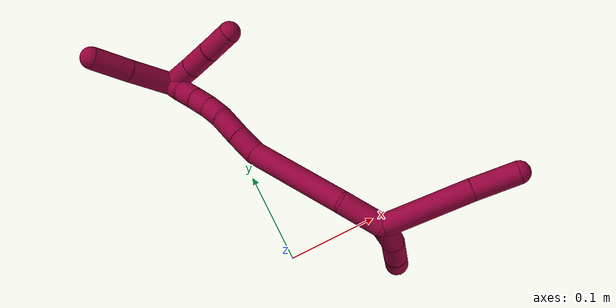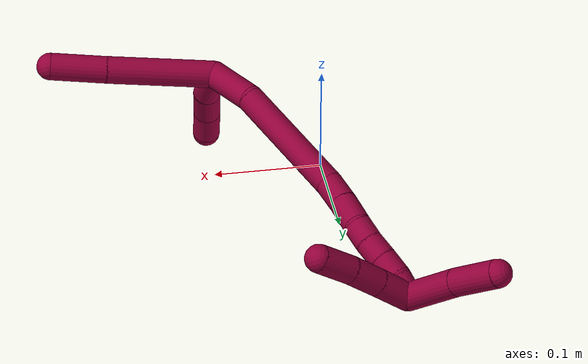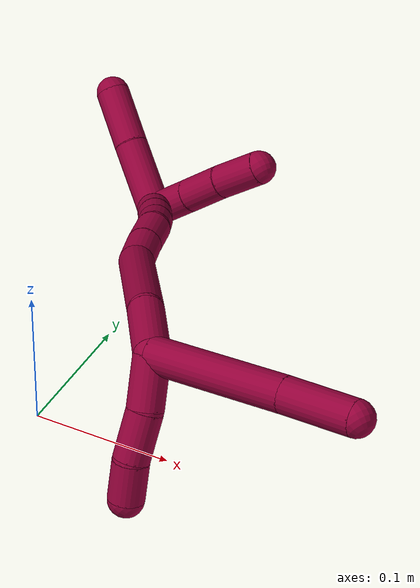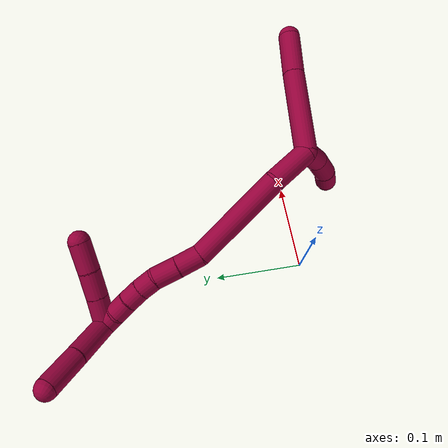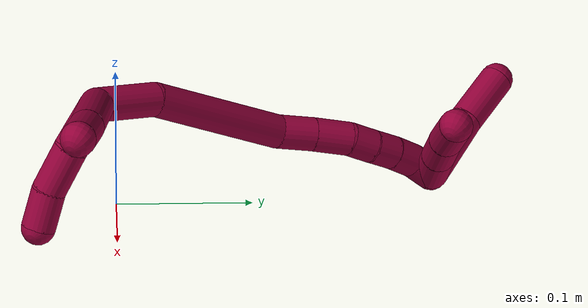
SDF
<sdf version="1.7">
 <world name="default">
  <model name="8">
   <static>0</static>
   <link name="8">
    <collision name="collision-cylinder-e_1_2_8">
     <pose>0.032631 0.004458 -0.036696 -3.02069 0.723194 -2.82423</pose>
     <geometry><cylinder><radius>0.0125</radius><length>0.098616</length></cylinder></geometry>
     <surface>
      <friction><ode><mu>1.16</mu><mu2>1.16</mu2><slip1>0</slip1><slip2>0</slip2></ode></friction>
      <contact><ode><kp>1e+06</kp><kd>1</kd><max_vel>0</max_vel><min_depth>0.001</min_depth></ode></contact>
     </surface>
    </collision>
    <visual name="visual-cylinder-e_1_2_8">
     <pose>0.032631 0.004458 -0.036696 -3.02069 0.723194 -2.82423</pose>
     <geometry><cylinder><radius>0.0125</radius><length>0.098616</length></cylinder></geometry>
     <material><ambient>0.584314 0 0.227451 1</ambient></material>
    </visual>
    <collision name="collision-cylinder-e_2_8_6">
     <pose>0.082022 0.010472 -0.092802 -3.06164 0.710679 -2.92684</pose>
     <geometry><cylinder><radius>0.0125</radius><length>0.051384</length></cylinder></geometry>
     <surface>
      <friction><ode><mu>1.16</mu><mu2>1.16</mu2><slip1>0</slip1><slip2>0</slip2></ode></friction>
      <contact><ode><kp>1e+06</kp><kd>1</kd><max_vel>0</max_vel><min_depth>0.001</min_depth></ode></contact>
     </surface>
    </collision>
    <visual name="visual-cylinder-e_2_8_6">
     <pose>0.082022 0.010472 -0.092802 -3.06164 0.710679 -2.92684</pose>
     <geometry><cylinder><radius>0.0125</radius><length>0.051384</length></cylinder></geometry>
     <material><ambient>0.584314 0 0.227451 1</ambient></material>
    </visual>
    <collision name="collision-cylinder-e_1_2_9">
     <pose>-0.01249 -0.000508 -0.013242 3.10328 -0.755783 -3.04513</pose>
     <geometry><cylinder><radius>0.0125</radius><length>0.03642</length></cylinder></geometry>
     <surface>
      <friction><ode><mu>1.16</mu><mu2>1.16</mu2><slip1>0</slip1><slip2>0</slip2></ode></friction>
      <contact><ode><kp>1e+06</kp><kd>1</kd><max_vel>0</max_vel><min_depth>0.001</min_depth></ode></contact>
     </surface>
    </collision>
    <visual name="visual-cylinder-e_1_2_9">
     <pose>-0.01249 -0.000508 -0.013242 3.10328 -0.755783 -3.04513</pose>
     <geometry><cylinder><radius>0.0125</radius><length>0.03642</length></cylinder></geometry>
     <material><ambient>0.584314 0 0.227451 1</ambient></material>
    </visual>
    <collision name="collision-cylinder-e_2_9_10">
     <pose>-0.039248 -0.000877 -0.036503 -3.12779 -0.958606 3.11504</pose>
     <geometry><cylinder><radius>0.0125</radius><length>0.034871</length></cylinder></geometry>
     <surface>
      <friction><ode><mu>1.16</mu><mu2>1.16</mu2><slip1>0</slip1><slip2>0</slip2></ode></friction>
      <contact><ode><kp>1e+06</kp><kd>1</kd><max_vel>0</max_vel><min_depth>0.001</min_depth></ode></contact>
     </surface>
    </collision>
    <visual name="visual-cylinder-e_2_9_10">
     <pose>-0.039248 -0.000877 -0.036503 -3.12779 -0.958606 3.11504</pose>
     <geometry><cylinder><radius>0.0125</radius><length>0.034871</length></cylinder></geometry>
     <material><ambient>0.584314 0 0.227451 1</ambient></material>
    </visual>
    <collision name="collision-cylinder-e_3_10_5">
     <pose>-0.064849 0.002325 -0.054784 -2.78651 -0.909823 2.4384</pose>
     <geometry><cylinder><radius>0.0125</radius><length>0.028709</length></cylinder></geometry>
     <surface>
      <friction><ode><mu>1.16</mu><mu2>1.16</mu2><slip1>0</slip1><slip2>0</slip2></ode></friction>
      <contact><ode><kp>1e+06</kp><kd>1</kd><max_vel>0</max_vel><min_depth>0.001</min_depth></ode></contact>
     </surface>
    </collision>
    <visual name="visual-cylinder-e_3_10_5">
     <pose>-0.064849 0.002325 -0.054784 -2.78651 -0.909823 2.4384</pose>
     <geometry><cylinder><radius>0.0125</radius><length>0.028709</length></cylinder></geometry>
     <material><ambient>0.584314 0 0.227451 1</ambient></material>
    </visual>
    <collision name="collision-cylinder-e_1_2_11">
     <pose>-0.004103 0.015785 0.018478 -0.706981 -0.167272 0.061846</pose>
     <geometry><cylinder><radius>0.0125</radius><length>0.049292</length></cylinder></geometry>
     <surface>
      <friction><ode><mu>1.16</mu><mu2>1.16</mu2><slip1>0</slip1><slip2>0</slip2></ode></friction>
      <contact><ode><kp>1e+06</kp><kd>1</kd><max_vel>0</max_vel><min_depth>0.001</min_depth></ode></contact>
     </surface>
    </collision>
    <visual name="visual-cylinder-e_1_2_11">
     <pose>-0.004103 0.015785 0.018478 -0.706981 -0.167272 0.061846</pose>
     <geometry><cylinder><radius>0.0125</radius><length>0.049292</length></cylinder></geometry>
     <material><ambient>0.584314 0 0.227451 1</ambient></material>
    </visual>
    <collision name="collision-cylinder-e_2_11_12">
     <pose>-0.028899 0.073879 0.068893 -0.924178 -0.372157 0.186977</pose>
     <geometry><cylinder><radius>0.0125</radius><length>0.11381</length></cylinder></geometry>
     <surface>
      <friction><ode><mu>1.16</mu><mu2>1.16</mu2><slip1>0</slip1><slip2>0</slip2></ode></friction>
      <contact><ode><kp>1e+06</kp><kd>1</kd><max_vel>0</max_vel><min_depth>0.001</min_depth></ode></contact>
     </surface>
    </collision>
    <visual name="visual-cylinder-e_2_11_12">
     <pose>-0.028899 0.073879 0.068893 -0.924178 -0.372157 0.186977</pose>
     <geometry><cylinder><radius>0.0125</radius><length>0.11381</length></cylinder></geometry>
     <material><ambient>0.584314 0 0.227451 1</ambient></material>
    </visual>
    <collision name="collision-cylinder-e_3_12_13">
     <pose>-0.050425 0.127753 0.108618 -0.9782 -0.059724 0.031794</pose>
     <geometry><cylinder><radius>0.0125</radius><length>0.027936</length></cylinder></geometry>
     <surface>
      <friction><ode><mu>1.16</mu><mu2>1.16</mu2><slip1>0</slip1><slip2>0</slip2></ode></friction>
      <contact><ode><kp>1e+06</kp><kd>1</kd><max_vel>0</max_vel><min_depth>0.001</min_depth></ode></contact>
     </surface>
    </collision>
    <visual name="visual-cylinder-e_3_12_13">
     <pose>-0.050425 0.127753 0.108618 -0.9782 -0.059724 0.031794</pose>
     <geometry><cylinder><radius>0.0125</radius><length>0.027936</length></cylinder></geometry>
     <material><ambient>0.584314 0 0.227451 1</ambient></material>
    </visual>
    <collision name="collision-cylinder-e_4_13_14">
     <pose>-0.052138 0.15153 0.123702 -1.03219 -0.061742 0.035039</pose>
     <geometry><cylinder><radius>0.0125</radius><length>0.028505</length></cylinder></geometry>
     <surface>
      <friction><ode><mu>1.16</mu><mu2>1.16</mu2><slip1>0</slip1><slip2>0</slip2></ode></friction>
      <contact><ode><kp>1e+06</kp><kd>1</kd><max_vel>0</max_vel><min_depth>0.001</min_depth></ode></contact>
     </surface>
    </collision>
    <visual name="visual-cylinder-e_4_13_14">
     <pose>-0.052138 0.15153 0.123702 -1.03219 -0.061742 0.035039</pose>
     <geometry><cylinder><radius>0.0125</radius><length>0.028505</length></cylinder></geometry>
     <material><ambient>0.584314 0 0.227451 1</ambient></material>
    </visual>
    <collision name="collision-cylinder-e_5_14_15">
     <pose>-0.055956 0.172113 0.135717 -1.05763 -0.296737 0.174233</pose>
     <geometry><cylinder><radius>0.0125</radius><length>0.020098</length></cylinder></geometry>
     <surface>
      <friction><ode><mu>1.16</mu><mu2>1.16</mu2><slip1>0</slip1><slip2>0</slip2></ode></friction>
      <contact><ode><kp>1e+06</kp><kd>1</kd><max_vel>0</max_vel><min_depth>0.001</min_depth></ode></contact>
     </surface>
    </collision>
    <visual name="visual-cylinder-e_5_14_15">
     <pose>-0.055956 0.172113 0.135717 -1.05763 -0.296737 0.174233</pose>
     <geometry><cylinder><radius>0.0125</radius><length>0.020098</length></cylinder></geometry>
     <material><ambient>0.584314 0 0.227451 1</ambient></material>
    </visual>
    <collision name="collision-cylinder-e_6_15_16">
     <pose>-0.062426 0.188296 0.145699 -0.977736 -0.358696 0.192281</pose>
     <geometry><cylinder><radius>0.0125</radius><length>0.02012</length></cylinder></geometry>
     <surface>
      <friction><ode><mu>1.16</mu><mu2>1.16</mu2><slip1>0</slip1><slip2>0</slip2></ode></friction>
      <contact><ode><kp>1e+06</kp><kd>1</kd><max_vel>0</max_vel><min_depth>0.001</min_depth></ode></contact>
     </surface>
    </collision>
    <visual name="visual-cylinder-e_6_15_16">
     <pose>-0.062426 0.188296 0.145699 -0.977736 -0.358696 0.192281</pose>
     <geometry><cylinder><radius>0.0125</radius><length>0.02012</length></cylinder></geometry>
     <material><ambient>0.584314 0 0.227451 1</ambient></material>
    </visual>
    <collision name="collision-cylinder-e_7_16_17">
     <pose>-0.070109 0.203907 0.155799 -1.0158 -0.42489 0.238977</pose>
     <geometry><cylinder><radius>0.0125</radius><length>0.020145</length></cylinder></geometry>
     <surface>
      <friction><ode><mu>1.16</mu><mu2>1.16</mu2><slip1>0</slip1><slip2>0</slip2></ode></friction>
      <contact><ode><kp>1e+06</kp><kd>1</kd><max_vel>0</max_vel><min_depth>0.001</min_depth></ode></contact>
     </surface>
    </collision>
    <visual name="visual-cylinder-e_7_16_17">
     <pose>-0.070109 0.203907 0.155799 -1.0158 -0.42489 0.238977</pose>
     <geometry><cylinder><radius>0.0125</radius><length>0.020145</length></cylinder></geometry>
     <material><ambient>0.584314 0 0.227451 1</ambient></material>
    </visual>
    <collision name="collision-cylinder-e_8_17_1">
     <pose>-0.079097 0.219973 0.16367 -1.21898 -0.502193 0.354414</pose>
     <geometry><cylinder><radius>0.0125</radius><length>0.020094</length></cylinder></geometry>
     <surface>
      <friction><ode><mu>1.16</mu><mu2>1.16</mu2><slip1>0</slip1><slip2>0</slip2></ode></friction>
      <contact><ode><kp>1e+06</kp><kd>1</kd><max_vel>0</max_vel><min_depth>0.001</min_depth></ode></contact>
     </surface>
    </collision>
    <visual name="visual-cylinder-e_8_17_1">
     <pose>-0.079097 0.219973 0.16367 -1.21898 -0.502193 0.354414</pose>
     <geometry><cylinder><radius>0.0125</radius><length>0.020094</length></cylinder></geometry>
     <material><ambient>0.584314 0 0.227451 1</ambient></material>
    </visual>
    <collision name="collision-cylinder-e_1_1_18">
     <pose>-0.079333 0.229503 0.193608 -0.046908 0.169193 -0.003978</pose>
     <geometry><cylinder><radius>0.0125</radius><length>0.054647</length></cylinder></geometry>
     <surface>
      <friction><ode><mu>1.16</mu><mu2>1.16</mu2><slip1>0</slip1><slip2>0</slip2></ode></friction>
      <contact><ode><kp>1e+06</kp><kd>1</kd><max_vel>0</max_vel><min_depth>0.001</min_depth></ode></contact>
     </surface>
    </collision>
    <visual name="visual-cylinder-e_1_1_18">
     <pose>-0.079333 0.229503 0.193608 -0.046908 0.169193 -0.003978</pose>
     <geometry><cylinder><radius>0.0125</radius><length>0.054647</length></cylinder></geometry>
     <material><ambient>0.584314 0 0.227451 1</ambient></material>
    </visual>
    <collision name="collision-cylinder-e_2_18_4">
     <pose>-0.071572 0.23323 0.242832 -0.109911 0.139782 -0.007702</pose>
     <geometry><cylinder><radius>0.0125</radius><length>0.045353</length></cylinder></geometry>
     <surface>
      <friction><ode><mu>1.16</mu><mu2>1.16</mu2><slip1>0</slip1><slip2>0</slip2></ode></friction>
      <contact><ode><kp>1e+06</kp><kd>1</kd><max_vel>0</max_vel><min_depth>0.001</min_depth></ode></contact>
     </surface>
    </collision>
    <visual name="visual-cylinder-e_2_18_4">
     <pose>-0.071572 0.23323 0.242832 -0.109911 0.139782 -0.007702</pose>
     <geometry><cylinder><radius>0.0125</radius><length>0.045353</length></cylinder></geometry>
     <material><ambient>0.584314 0 0.227451 1</ambient></material>
    </visual>
    <collision name="collision-cylinder-e_1_1_19">
     <pose>-0.067196 0.227587 0.161695 3.01179 1.27765 2.96703</pose>
     <geometry><cylinder><radius>0.0125</radius><length>0.034968</length></cylinder></geometry>
     <surface>
      <friction><ode><mu>1.16</mu><mu2>1.16</mu2><slip1>0</slip1><slip2>0</slip2></ode></friction>
      <contact><ode><kp>1e+06</kp><kd>1</kd><max_vel>0</max_vel><min_depth>0.001</min_depth></ode></contact>
     </surface>
    </collision>
    <visual name="visual-cylinder-e_1_1_19">
     <pose>-0.067196 0.227587 0.161695 3.01179 1.27765 2.96703</pose>
     <geometry><cylinder><radius>0.0125</radius><length>0.034968</length></cylinder></geometry>
     <material><ambient>0.584314 0 0.227451 1</ambient></material>
    </visual>
    <collision name="collision-cylinder-e_2_19_20">
     <pose>-0.035646 0.22672 0.152416 3.09179 1.28988 3.0754</pose>
     <geometry><cylinder><radius>0.0125</radius><length>0.030832</length></cylinder></geometry>
     <surface>
      <friction><ode><mu>1.16</mu><mu2>1.16</mu2><slip1>0</slip1><slip2>0</slip2></ode></friction>
      <contact><ode><kp>1e+06</kp><kd>1</kd><max_vel>0</max_vel><min_depth>0.001</min_depth></ode></contact>
     </surface>
    </collision>
    <visual name="visual-cylinder-e_2_19_20">
     <pose>-0.035646 0.22672 0.152416 3.09179 1.28988 3.0754</pose>
     <geometry><cylinder><radius>0.0125</radius><length>0.030832</length></cylinder></geometry>
     <material><ambient>0.584314 0 0.227451 1</ambient></material>
    </visual>
    <collision name="collision-cylinder-e_3_20_3">
     <pose>-0.004591 0.22726 0.142854 -3.00027 1.25279 -2.94658</pose>
     <geometry><cylinder><radius>0.0125</radius><length>0.0342</length></cylinder></geometry>
     <surface>
      <friction><ode><mu>1.16</mu><mu2>1.16</mu2><slip1>0</slip1><slip2>0</slip2></ode></friction>
      <contact><ode><kp>1e+06</kp><kd>1</kd><max_vel>0</max_vel><min_depth>0.001</min_depth></ode></contact>
     </surface>
    </collision>
    <visual name="visual-cylinder-e_3_20_3">
     <pose>-0.004591 0.22726 0.142854 -3.00027 1.25279 -2.94658</pose>
     <geometry><cylinder><radius>0.0125</radius><length>0.0342</length></cylinder></geometry>
     <material><ambient>0.584314 0 0.227451 1</ambient></material>
    </visual>
    <collision name="collision-sphere-3">
     <pose>0.011651 0.228013 0.137561 0 -0 0</pose>
     <geometry><sphere><radius>0.0125</radius></sphere></geometry>
     <surface>
      <friction><ode><mu>1.16</mu><mu2>1.16</mu2><slip1>0</slip1><slip2>0</slip2></ode></friction>
      <contact><ode><kp>1e+06</kp><kd>1</kd><max_vel>0</max_vel><min_depth>0.001</min_depth></ode></contact>
     </surface>
    </collision>
    <visual name="visual-sphere-3">
     <pose>0.011651 0.228013 0.137561 0 -0 0</pose>
     <geometry><sphere><radius>0.0125</radius></sphere></geometry>
     <material><ambient>0.584314 0 0.227451 1</ambient></material>
    </visual>
    <collision name="collision-sphere-20">
     <pose>-0.020834 0.226507 0.148148 0 -0 0</pose>
     <geometry><sphere><radius>0.0125</radius></sphere></geometry>
     <surface>
      <friction><ode><mu>1.16</mu><mu2>1.16</mu2><slip1>0</slip1><slip2>0</slip2></ode></friction>
      <contact><ode><kp>1e+06</kp><kd>1</kd><max_vel>0</max_vel><min_depth>0.001</min_depth></ode></contact>
     </surface>
    </collision>
    <visual name="visual-sphere-20">
     <pose>-0.020834 0.226507 0.148148 0 -0 0</pose>
     <geometry><sphere><radius>0.0125</radius></sphere></geometry>
     <material><ambient>0.584314 0 0.227451 1</ambient></material>
    </visual>
    <collision name="collision-sphere-19">
     <pose>-0.050457 0.226933 0.156685 0 -0 0</pose>
     <geometry><sphere><radius>0.0125</radius></sphere></geometry>
     <surface>
      <friction><ode><mu>1.16</mu><mu2>1.16</mu2><slip1>0</slip1><slip2>0</slip2></ode></friction>
      <contact><ode><kp>1e+06</kp><kd>1</kd><max_vel>0</max_vel><min_depth>0.001</min_depth></ode></contact>
     </surface>
    </collision>
    <visual name="visual-sphere-19">
     <pose>-0.050457 0.226933 0.156685 0 -0 0</pose>
     <geometry><sphere><radius>0.0125</radius></sphere></geometry>
     <material><ambient>0.584314 0 0.227451 1</ambient></material>
    </visual>
    <collision name="collision-sphere-5">
     <pose>-0.07618 0.005388 -0.063046 0 -0 0</pose>
     <geometry><sphere><radius>0.0125</radius></sphere></geometry>
     <surface>
      <friction><ode><mu>1.16</mu><mu2>1.16</mu2><slip1>0</slip1><slip2>0</slip2></ode></friction>
      <contact><ode><kp>1e+06</kp><kd>1</kd><max_vel>0</max_vel><min_depth>0.001</min_depth></ode></contact>
     </surface>
    </collision>
    <visual name="visual-sphere-5">
     <pose>-0.07618 0.005388 -0.063046 0 -0 0</pose>
     <geometry><sphere><radius>0.0125</radius></sphere></geometry>
     <material><ambient>0.584314 0 0.227451 1</ambient></material>
    </visual>
    <collision name="collision-sphere-10">
     <pose>-0.053517 -0.000739 -0.046522 0 -0 0</pose>
     <geometry><sphere><radius>0.0125</radius></sphere></geometry>
     <surface>
      <friction><ode><mu>1.16</mu><mu2>1.16</mu2><slip1>0</slip1><slip2>0</slip2></ode></friction>
      <contact><ode><kp>1e+06</kp><kd>1</kd><max_vel>0</max_vel><min_depth>0.001</min_depth></ode></contact>
     </surface>
    </collision>
    <visual name="visual-sphere-10">
     <pose>-0.053517 -0.000739 -0.046522 0 -0 0</pose>
     <geometry><sphere><radius>0.0125</radius></sphere></geometry>
     <material><ambient>0.584314 0 0.227451 1</ambient></material>
    </visual>
    <collision name="collision-sphere-6">
     <pose>0.098783 0.012028 -0.112213 0 -0 0</pose>
     <geometry><sphere><radius>0.0125</radius></sphere></geometry>
     <surface>
      <friction><ode><mu>1.16</mu><mu2>1.16</mu2><slip1>0</slip1><slip2>0</slip2></ode></friction>
      <contact><ode><kp>1e+06</kp><kd>1</kd><max_vel>0</max_vel><min_depth>0.001</min_depth></ode></contact>
     </surface>
    </collision>
    <visual name="visual-sphere-6">
     <pose>0.098783 0.012028 -0.112213 0 -0 0</pose>
     <geometry><sphere><radius>0.0125</radius></sphere></geometry>
     <material><ambient>0.584314 0 0.227451 1</ambient></material>
    </visual>
    <collision name="collision-sphere-9">
     <pose>-0.024979 -0.001015 -0.026485 0 -0 0</pose>
     <geometry><sphere><radius>0.0125</radius></sphere></geometry>
     <surface>
      <friction><ode><mu>1.16</mu><mu2>1.16</mu2><slip1>0</slip1><slip2>0</slip2></ode></friction>
      <contact><ode><kp>1e+06</kp><kd>1</kd><max_vel>0</max_vel><min_depth>0.001</min_depth></ode></contact>
     </surface>
    </collision>
    <visual name="visual-sphere-9">
     <pose>-0.024979 -0.001015 -0.026485 0 -0 0</pose>
     <geometry><sphere><radius>0.0125</radius></sphere></geometry>
     <material><ambient>0.584314 0 0.227451 1</ambient></material>
    </visual>
    <collision name="collision-sphere-2">
     <geometry><sphere><radius>0.0125</radius></sphere></geometry>
     <surface>
      <friction><ode><mu>1.16</mu><mu2>1.16</mu2><slip1>0</slip1><slip2>0</slip2></ode></friction>
      <contact><ode><kp>1e+06</kp><kd>1</kd><max_vel>0</max_vel><min_depth>0.001</min_depth></ode></contact>
     </surface>
    </collision>
    <visual name="visual-sphere-2">
     <geometry><sphere><radius>0.0125</radius></sphere></geometry>
     <material><ambient>0.584314 0 0.227451 1</ambient></material>
    </visual>
    <collision name="collision-sphere-8">
     <pose>0.065262 0.008917 -0.073392 0 -0 0</pose>
     <geometry><sphere><radius>0.0125</radius></sphere></geometry>
     <surface>
      <friction><ode><mu>1.16</mu><mu2>1.16</mu2><slip1>0</slip1><slip2>0</slip2></ode></friction>
      <contact><ode><kp>1e+06</kp><kd>1</kd><max_vel>0</max_vel><min_depth>0.001</min_depth></ode></contact>
     </surface>
    </collision>
    <visual name="visual-sphere-8">
     <pose>0.065262 0.008917 -0.073392 0 -0 0</pose>
     <geometry><sphere><radius>0.0125</radius></sphere></geometry>
     <material><ambient>0.584314 0 0.227451 1</ambient></material>
    </visual>
    <collision name="collision-sphere-11">
     <pose>-0.008207 0.031571 0.036955 0 -0 0</pose>
     <geometry><sphere><radius>0.0125</radius></sphere></geometry>
     <surface>
      <friction><ode><mu>1.16</mu><mu2>1.16</mu2><slip1>0</slip1><slip2>0</slip2></ode></friction>
      <contact><ode><kp>1e+06</kp><kd>1</kd><max_vel>0</max_vel><min_depth>0.001</min_depth></ode></contact>
     </surface>
    </collision>
    <visual name="visual-sphere-11">
     <pose>-0.008207 0.031571 0.036955 0 -0 0</pose>
     <geometry><sphere><radius>0.0125</radius></sphere></geometry>
     <material><ambient>0.584314 0 0.227451 1</ambient></material>
    </visual>
    <collision name="collision-sphere-12">
     <pose>-0.049591 0.116187 0.100831 0 -0 0</pose>
     <geometry><sphere><radius>0.0125</radius></sphere></geometry>
     <surface>
      <friction><ode><mu>1.16</mu><mu2>1.16</mu2><slip1>0</slip1><slip2>0</slip2></ode></friction>
      <contact><ode><kp>1e+06</kp><kd>1</kd><max_vel>0</max_vel><min_depth>0.001</min_depth></ode></contact>
     </surface>
    </collision>
    <visual name="visual-sphere-12">
     <pose>-0.049591 0.116187 0.100831 0 -0 0</pose>
     <geometry><sphere><radius>0.0125</radius></sphere></geometry>
     <material><ambient>0.584314 0 0.227451 1</ambient></material>
    </visual>
    <collision name="collision-sphere-13">
     <pose>-0.051259 0.139319 0.116406 0 -0 0</pose>
     <geometry><sphere><radius>0.0125</radius></sphere></geometry>
     <surface>
      <friction><ode><mu>1.16</mu><mu2>1.16</mu2><slip1>0</slip1><slip2>0</slip2></ode></friction>
      <contact><ode><kp>1e+06</kp><kd>1</kd><max_vel>0</max_vel><min_depth>0.001</min_depth></ode></contact>
     </surface>
    </collision>
    <visual name="visual-sphere-13">
     <pose>-0.051259 0.139319 0.116406 0 -0 0</pose>
     <geometry><sphere><radius>0.0125</radius></sphere></geometry>
     <material><ambient>0.584314 0 0.227451 1</ambient></material>
    </visual>
    <collision name="collision-sphere-14">
     <pose>-0.053017 0.163741 0.130999 0 -0 0</pose>
     <geometry><sphere><radius>0.0125</radius></sphere></geometry>
     <surface>
      <friction><ode><mu>1.16</mu><mu2>1.16</mu2><slip1>0</slip1><slip2>0</slip2></ode></friction>
      <contact><ode><kp>1e+06</kp><kd>1</kd><max_vel>0</max_vel><min_depth>0.001</min_depth></ode></contact>
     </surface>
    </collision>
    <visual name="visual-sphere-14">
     <pose>-0.053017 0.163741 0.130999 0 -0 0</pose>
     <geometry><sphere><radius>0.0125</radius></sphere></geometry>
     <material><ambient>0.584314 0 0.227451 1</ambient></material>
    </visual>
    <collision name="collision-sphere-15">
     <pose>-0.058894 0.180485 0.140435 0 -0 0</pose>
     <geometry><sphere><radius>0.0125</radius></sphere></geometry>
     <surface>
      <friction><ode><mu>1.16</mu><mu2>1.16</mu2><slip1>0</slip1><slip2>0</slip2></ode></friction>
      <contact><ode><kp>1e+06</kp><kd>1</kd><max_vel>0</max_vel><min_depth>0.001</min_depth></ode></contact>
     </surface>
    </collision>
    <visual name="visual-sphere-15">
     <pose>-0.058894 0.180485 0.140435 0 -0 0</pose>
     <geometry><sphere><radius>0.0125</radius></sphere></geometry>
     <material><ambient>0.584314 0 0.227451 1</ambient></material>
    </visual>
    <collision name="collision-sphere-16">
     <pose>-0.065957 0.196107 0.150964 0 -0 0</pose>
     <geometry><sphere><radius>0.0125</radius></sphere></geometry>
     <surface>
      <friction><ode><mu>1.16</mu><mu2>1.16</mu2><slip1>0</slip1><slip2>0</slip2></ode></friction>
      <contact><ode><kp>1e+06</kp><kd>1</kd><max_vel>0</max_vel><min_depth>0.001</min_depth></ode></contact>
     </surface>
    </collision>
    <visual name="visual-sphere-16">
     <pose>-0.065957 0.196107 0.150964 0 -0 0</pose>
     <geometry><sphere><radius>0.0125</radius></sphere></geometry>
     <material><ambient>0.584314 0 0.227451 1</ambient></material>
    </visual>
    <collision name="collision-sphere-17">
     <pose>-0.074261 0.211706 0.160635 0 -0 0</pose>
     <geometry><sphere><radius>0.0125</radius></sphere></geometry>
     <surface>
      <friction><ode><mu>1.16</mu><mu2>1.16</mu2><slip1>0</slip1><slip2>0</slip2></ode></friction>
      <contact><ode><kp>1e+06</kp><kd>1</kd><max_vel>0</max_vel><min_depth>0.001</min_depth></ode></contact>
     </surface>
    </collision>
    <visual name="visual-sphere-17">
     <pose>-0.074261 0.211706 0.160635 0 -0 0</pose>
     <geometry><sphere><radius>0.0125</radius></sphere></geometry>
     <material><ambient>0.584314 0 0.227451 1</ambient></material>
    </visual>
    <collision name="collision-sphere-1">
     <pose>-0.083934 0.228241 0.166705 0 -0 0</pose>
     <geometry><sphere><radius>0.0125</radius></sphere></geometry>
     <surface>
      <friction><ode><mu>1.16</mu><mu2>1.16</mu2><slip1>0</slip1><slip2>0</slip2></ode></friction>
      <contact><ode><kp>1e+06</kp><kd>1</kd><max_vel>0</max_vel><min_depth>0.001</min_depth></ode></contact>
     </surface>
    </collision>
    <visual name="visual-sphere-1">
     <pose>-0.083934 0.228241 0.166705 0 -0 0</pose>
     <geometry><sphere><radius>0.0125</radius></sphere></geometry>
     <material><ambient>0.584314 0 0.227451 1</ambient></material>
    </visual>
    <collision name="collision-sphere-18">
     <pose>-0.074732 0.230766 0.220512 0 -0 0</pose>
     <geometry><sphere><radius>0.0125</radius></sphere></geometry>
     <surface>
      <friction><ode><mu>1.16</mu><mu2>1.16</mu2><slip1>0</slip1><slip2>0</slip2></ode></friction>
      <contact><ode><kp>1e+06</kp><kd>1</kd><max_vel>0</max_vel><min_depth>0.001</min_depth></ode></contact>
     </surface>
    </collision>
    <visual name="visual-sphere-18">
     <pose>-0.074732 0.230766 0.220512 0 -0 0</pose>
     <geometry><sphere><radius>0.0125</radius></sphere></geometry>
     <material><ambient>0.584314 0 0.227451 1</ambient></material>
    </visual>
    <collision name="collision-sphere-4">
     <pose>-0.068413 0.235693 0.265152 0 -0 0</pose>
     <geometry><sphere><radius>0.0125</radius></sphere></geometry>
     <surface>
      <friction><ode><mu>1.16</mu><mu2>1.16</mu2><slip1>0</slip1><slip2>0</slip2></ode></friction>
      <contact><ode><kp>1e+06</kp><kd>1</kd><max_vel>0</max_vel><min_depth>0.001</min_depth></ode></contact>
     </surface>
    </collision>
    <visual name="visual-sphere-4">
     <pose>-0.068413 0.235693 0.265152 0 -0 0</pose>
     <geometry><sphere><radius>0.0125</radius></sphere></geometry>
     <material><ambient>0.584314 0 0.227451 1</ambient></material>
    </visual>
    <inertial>
     <pose>-0.025611 0.106247 0.070021 0 -0 0</pose>
     <mass>0.75</mass>
     <inertia><ixx>9e-05</ixx><ixy>0</ixy><ixz>0</ixz><iyy>0.000267</iyy><iyz>0</iyz><izz>-0.000138</izz></inertia>
    </inertial>
   </link>
   <pose>0.097543 -0.013687 0.100875 -0.773483 -0.842735 0.39927</pose>
  </model>
 </world>
</sdf>
